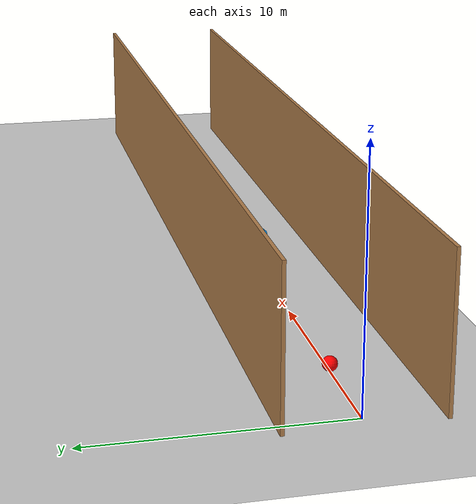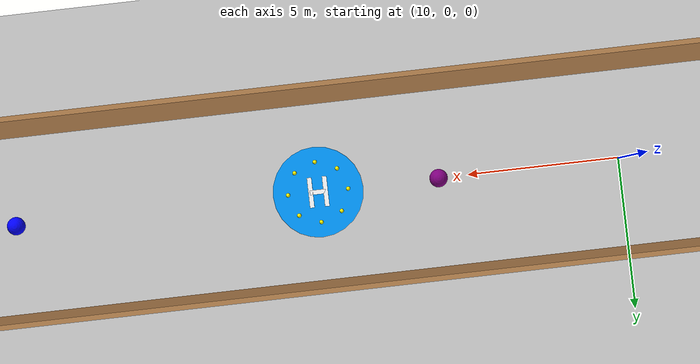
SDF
<sdf version="1.7">
 <world name="default">
  <light name="sun" type="directional">
   <pose>0 0 10 0 -0 0</pose>
   <diffuse>0.8 0.8 0.8 1</diffuse>
   <specular>0.2 0.2 0.2 1</specular>
   <attenuation>
    <range>1000</range>
    <constant>0.9</constant>
    <linear>0.01</linear>
    <quadratic>0.001</quadratic>
   </attenuation>
   <direction>-0.5 0.1 -0.9</direction>
   <spot><inner_angle>0</inner_angle><outer_angle>0</outer_angle><falloff>0</falloff></spot>
  </light>
  <model name="ground_plane">
   <static>1</static>
   <link name="link">
    <collision name="collision">
     <geometry><plane><normal>0 0 1</normal><size>100 100</size></plane></geometry>
     <surface>
      <contact><collide_bitmask>65535</collide_bitmask></contact>
      <friction><ode><mu>100</mu><mu2>50</mu2></ode></friction>
     </surface>
    </collision>
    <visual name="visual">
     <cast_shadows>0</cast_shadows>
     <geometry><plane><normal>0 0 1</normal><size>100 100</size></plane></geometry>
     <material>
      <script><uri>file://media/materials/scripts/gazebo.material</uri><name>Gazebo/Grey</name></script>
     </material>
    </visual>
   </link>
  </model>
  <gravity>0 0 -9.8</gravity>
  <magnetic_field>6e-06 2.3e-05 -4.2e-05</magnetic_field>
  <atmosphere type="adiabatic"/>
  <physics type="ode">
   <max_step_size>0.001</max_step_size>
   <real_time_factor>1</real_time_factor>
   <real_time_update_rate>1000</real_time_update_rate>
  </physics>
  <spherical_coordinates>
   <surface_model>EARTH_WGS84</surface_model>
   <latitude_deg>0</latitude_deg>
   <longitude_deg>0</longitude_deg>
   <elevation>0</elevation>
   <heading_deg>0</heading_deg>
  </spherical_coordinates>
  <model name="corridor">
   <pose>20 0 0 0 -0 0</pose>
   <link name="Wall_0">
    <collision name="Wall_0_Collision">
     <geometry><box><size>41.15 0.15 6.5</size></box></geometry>
     <pose>0 0 3.0 0 -0 0</pose>
    </collision>
    <visual name="Wall_0_Visual">
     <pose>0 0 3.0 0 -0 0</pose>
     <geometry><box><size>41.15 0.15 6.5</size></box></geometry>
     <material>
      <script><uri>file://media/materials/scripts/gazebo.material</uri><name>Gazebo/Wood</name></script>
      <ambient>1 1 1 1</ambient>
     </material>
     <meta><layer>0</layer></meta>
    </visual>
    <pose>0 3 0 0 -0 0</pose>
   </link>
   <link name="Wall_2">
    <collision name="Wall_2_Collision">
     <geometry><box><size>41.15 0.15 6.5</size></box></geometry>
     <pose>0 0 3.0 0 -0 0</pose>
    </collision>
    <visual name="Wall_2_Visual">
     <pose>0 0 3.0 0 -0 0</pose>
     <geometry><box><size>41.15 0.15 6.5</size></box></geometry>
     <material>
      <script><uri>file://media/materials/scripts/gazebo.material</uri><name>Gazebo/Wood</name></script>
      <ambient>1 1 1 1</ambient>
     </material>
     <meta><layer>0</layer></meta>
    </visual>
    <pose>0 -3 0 0 -0 0</pose>
   </link>
   <static>1</static>
  </model>
  <model name="helipad_marker">
   <static>true</static>
   <link name="helipad_link">
    <visual name="helipad_base">
     <geometry><cylinder><radius>1.5</radius><length>0.05</length></cylinder></geometry>
     <material><ambient>0 0.6 1 1</ambient><diffuse>0 0.6 1 1</diffuse></material>
     <pose>0 0 0.025 0 0 0</pose>
    </visual>
    <visual name="helipad_H1">
     <geometry><box><size>0.15 1.0 0.02</size></box></geometry>
     <material><ambient>1 1 1 1</ambient><diffuse>1 1 1 1</diffuse></material>
     <pose>-0.25 0 0.06 0 0 0</pose>
    </visual>
    <visual name="helipad_H2">
     <geometry><box><size>0.15 1.0 0.02</size></box></geometry>
     <material><ambient>1 1 1 1</ambient><diffuse>1 1 1 1</diffuse></material>
     <pose>0.25 0 0.06 0 0 0</pose>
    </visual>
    <visual name="helipad_H3">
     <geometry><box><size>0.55 0.15 0.02</size></box></geometry>
     <material><ambient>1 1 1 1</ambient><diffuse>1 1 1 1</diffuse></material>
     <pose>0 0 0.06 0 0 0</pose>
    </visual>
    <visual name="light_ball_0">
     <geometry><sphere><radius>0.07</radius></sphere></geometry>
     <material><ambient>1 1 0 1</ambient><diffuse>1 1 0 1</diffuse></material>
     <pose>1 0 0.1 0 0 0</pose>
    </visual>
    <visual name="light_ball_1">
     <geometry><sphere><radius>0.07</radius></sphere></geometry>
     <material><ambient>1 1 0 1</ambient><diffuse>1 1 0 1</diffuse></material>
     <pose>0.707 0.707 0.1 0 0 0</pose>
    </visual>
    <visual name="light_ball_2">
     <geometry><sphere><radius>0.07</radius></sphere></geometry>
     <material><ambient>1 1 0 1</ambient><diffuse>1 1 0 1</diffuse></material>
     <pose>0 1 0.1 0 0 0</pose>
    </visual>
    <visual name="light_ball_3">
     <geometry><sphere><radius>0.07</radius></sphere></geometry>
     <material><ambient>1 1 0 1</ambient><diffuse>1 1 0 1</diffuse></material>
     <pose>-0.707 0.707 0.1 0 0 0</pose>
    </visual>
    <visual name="light_ball_4">
     <geometry><sphere><radius>0.07</radius></sphere></geometry>
     <material><ambient>1 1 0 1</ambient><diffuse>1 1 0 1</diffuse></material>
     <pose>-1 0 0.1 0 0 0</pose>
    </visual>
    <visual name="light_ball_5">
     <geometry><sphere><radius>0.07</radius></sphere></geometry>
     <material><ambient>1 1 0 1</ambient><diffuse>1 1 0 1</diffuse></material>
     <pose>-0.707 -0.707 0.1 0 0 0</pose>
    </visual>
    <visual name="light_ball_6">
     <geometry><sphere><radius>0.07</radius></sphere></geometry>
     <material><ambient>1 1 0 1</ambient><diffuse>1 1 0 1</diffuse></material>
     <pose>0 -1 0.1 0 0 0</pose>
    </visual>
    <visual name="light_ball_7">
     <geometry><sphere><radius>0.07</radius></sphere></geometry>
     <material><ambient>1 1 0 1</ambient><diffuse>1 1 0 1</diffuse></material>
     <pose>0.707 -0.707 0.1 0 0 0</pose>
    </visual>
   </link>
   <pose>20 0 0 0 0 0</pose>
  </model>
  <model name="red_ball_only">
   <pose>4 0 0.3 0 0 0</pose>
   <link name="link">
    <collision name="collision"><geometry><sphere><radius>0.3</radius></sphere></geometry></collision>
    <visual name="visual">
     <geometry><sphere><radius>0.3</radius></sphere></geometry>
     <material><ambient>1 0 0 1</ambient><diffuse>1 0 0 1</diffuse><specular>0.3 0.1 0.1 1</specular></material>
    </visual>
   </link>
   <plugin name="obstacle_motion" filename="libobstaclePathPlugin.so">
    <loop>0</loop>
    <velocity>0.5</velocity>
    <angular_velocity>0.8</angular_velocity>
    <path><waypoint>4.0 -1.5 0.0</waypoint><waypoint>4.0 1.5 0.0</waypoint></path>
   </plugin>
  </model>
  <model name="blue_ball">
   <pose>30 0 0.3 0 0 0</pose>
   <link name="link">
    <collision name="collision"><geometry><sphere><radius>0.3</radius></sphere></geometry></collision>
    <visual name="visual">
     <geometry><sphere><radius>0.3</radius></sphere></geometry>
     <material><ambient>0 0 1 1</ambient><diffuse>0 0 1 1</diffuse><specular>0.1 0.1 0.5 1</specular></material>
    </visual>
   </link>
   <plugin name="obstacle_motion" filename="libobstaclePathPlugin.so">
    <loop>0</loop>
    <velocity>0.5</velocity>
    <angular_velocity>0.8</angular_velocity>
    <path><waypoint>30.0 -1.5 0.0</waypoint><waypoint>30.0 1.5 0.0</waypoint></path>
   </plugin>
  </model>
  <model name="purple_ball">
   <pose>16 0 0.3 0 0 0</pose>
   <link name="link">
    <collision name="collision"><geometry><sphere><radius>0.3</radius></sphere></geometry></collision>
    <visual name="visual">
     <geometry><sphere><radius>0.3</radius></sphere></geometry>
     <material>
      <ambient>0.5 0 0.5 1</ambient>
      <diffuse>0.5 0 0.5 1</diffuse>
      <specular>0.3 0.1 0.4 1</specular>
     </material>
    </visual>
   </link>
   <plugin name="obstacle_motion" filename="libobstaclePathPlugin.so">
    <loop>0</loop>
    <velocity>0.5</velocity>
    <angular_velocity>0.8</angular_velocity>
    <path><waypoint>16.0 -1.5 0.0</waypoint><waypoint>16.0 1.5 0.0</waypoint></path>
   </plugin>
  </model>
 </world>
</sdf>
